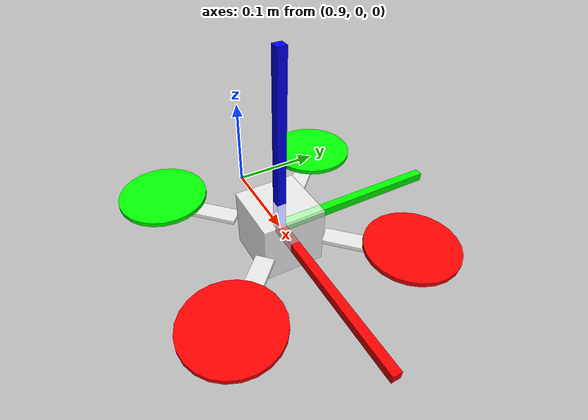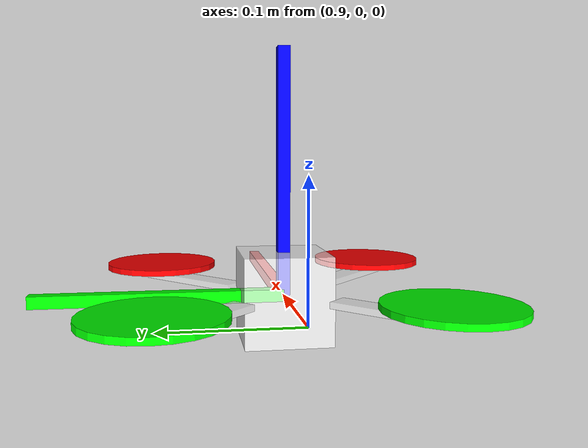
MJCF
<mujoco model="quadrotor0">
    <compiler inertiafromgeom="true" coordinate="local"/>
    <option timestep="0.001" gravity="0 0 -9.81" density="1" viscosity="1e-5" />
    <visual>
        <map fogstart="3" fogend="5" force="0.1" znear="0.1"/>
        <quality shadowsize="2048"/>
        <global offwidth="800" offheight="800"/>
    </visual>
    <asset>
        <texture type="skybox" builtin="gradient" width="128" height="128" rgb1=".4 .6 .8"
            rgb2="0 0 0"/>
        <texture name="texgeom" type="cube" builtin="flat" mark="cross" width="127" height="1278"
            rgb1="0.8 0.6 0.4" rgb2="0.8 0.6 0.4" markrgb="1 1 1" random="0.01"/>
        <texture name="texplane" type="2d" builtin="checker" rgb1=".2 .3 .4" rgb2=".1 0.15 0.2"
            width="512" height="512"/>
        <material name='MatPlane' reflectance='0.5' texture="texplane" texrepeat="1 1" texuniform="true"/>
        <material name='geom' texture="texgeom" texuniform="true"/>
    </asset>
    <worldbody>
        <light directional='true' diffuse='.8 .8 .8' specular='0.3 0.3 0.3' pos='0 0 4.0' dir='0 -.15 -1'/>
        <geom name="floor" pos="0 0 -4" size="2 2 .2" type="plane" material="MatPlane" conaffinity="1" rgba="1 1 1 1" condim="3"/>
        <body name="quadrotor" pos="1 0 0">
            <geom name="core" type="box" pos="0 0 0" quat = "1. 0. 0. 0" size="0.035 0.035 0.035"  rgba="1 1 1 0.7" mass = ".4"/>

            <geom name="a00" type="box" pos=".071 0.071 0.0" size="0.05 0.01 0.0025"  quat = ".924 0.0 0.0 0.383" rgba="1 1 1 0.7" mass = ".025"/>
            <geom name="a10" type="box" pos=".071 -0.071 0.0" size="0.05 0.01 0.0025"  quat = ".383 0.0 0.0 0.924" rgba="1 1 1 0.7" mass = ".025"/>
            <geom name="a20" type="box" pos="-0.071 -0.071 0.0" size="0.05 0.01 0.0025"  quat = "-.383 0.0 0.0 0.924" rgba="1 1 1 0.7" mass = ".025"/>
            <geom name="a30" type="box" pos="-.071 0.071 0.0" size="0.05 0.01 0.0025"  quat = ".924 0.0 0.0 -0.383" rgba="1 1 1 0.7" mass = ".025"/>

            <joint name="root"   type="free" damping="0" armature="0" pos="0 0 0" />

            <!-- Actuator sites to attach actuators, make it invisible -->
            <site name="thrust" type="box" pos="0 0 0"  size="0.035 0.035 0.035"  quat = "1.0 0.0 0.0 0." rgba="0 1 1 0" />
            <site name="rateX"  type="box" pos="0 0 0" quat = "1. 0. 0. 0."  size="0.06 0.035 0.025" rgba="0 1 1 0"/>
            <site name="rateY"  type="box" pos="0 0 0" quat = "1. 0. 0. 0."  size="0.06 0.035 0.025" rgba="0 1 1 0"/>
            <site name="rateZ"  type="box" pos="0 0 0" quat = "1. 0. 0. 0."  size="0.06 0.035 0.025" rgba="0 1 1 0"/>

            <!-- Thruster geometries for collisions since site's are excluded from collision checking -->
            <geom name="thruster0" type="cylinder" pos=" 0.1  0.1  0.01" size="0.05 0.0025"  quat = "1.0 0.0 0.0 0." rgba="1 0.0 0.0 1" mass = ".025"/>
            <geom name="thruster1" type="cylinder" pos=" 0.1 -0.1  0.01" size="0.05 0.0025"  quat = "1.0 0.0 0.0 0." rgba="1 0.0 0.0 1" mass = ".025"/>
            <geom name="thruster2" type="cylinder" pos="-0.1 -0.1  0.01" size="0.05 0.0025"  quat = "1.0 0.0 0.0 0." rgba="0 1 0 1" mass = ".025"/>
            <geom name="thruster3" type="cylinder" pos="-0.1  0.1  0.01" size="0.05 0.0025"  quat = "1.0 0.0 0.0 0." rgba="0 1 0 1" mass = ".025"/>

            <!-- Visualization of the coordinate frame -->
            <site name="qcX" type="box" pos="0.1 0.0 0.0" size="0.1 0.005 0.005"  quat = " 1.000  0.0  0.0    0."     rgba="1 0 0 1" />
            <site name="qcY" type="box" pos="0.0 0.1 0.0" size="0.1 0.005 0.005"  quat = " 0.707  0.0  0.0    0.707"  rgba="0 1 0 1" />
            <site name="qcZ" type="box" pos="0.0 0.0 0.1" size="0.1 0.005 0.005"  quat = "-0.707  0.0  0.707  0."     rgba="0 0 1 1" />
        </body>
    </worldbody>
    <actuator>
        <motor ctrllimited="true" ctrlrange="0.0 7.0" gear="0  0. 1. 0. 0. 0." site="thrust"/>
        <velocity ctrllimited="true" ctrlrange="-1 1" gear="0. 0. 0. 1. 0. 0." kv="0.1" site="rateX"/>
        <velocity ctrllimited="true" ctrlrange="-1 1" gear="0. 0. 0. 0. 1. 0." kv="0.1" site="rateY"/>
        <velocity ctrllimited="true" ctrlrange="-1 1" gear="0. 0. 0. 0. 0. 1." kv="0.1" site="rateZ"/>
    </actuator>
</mujoco>
